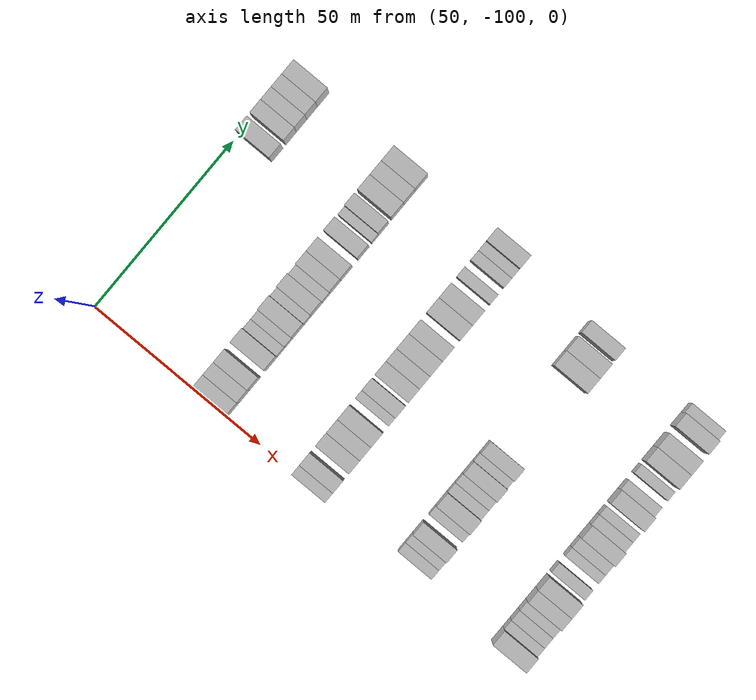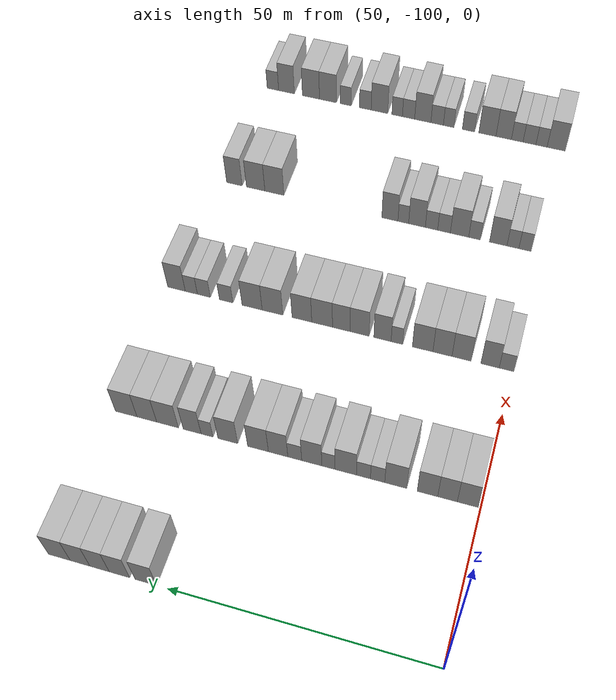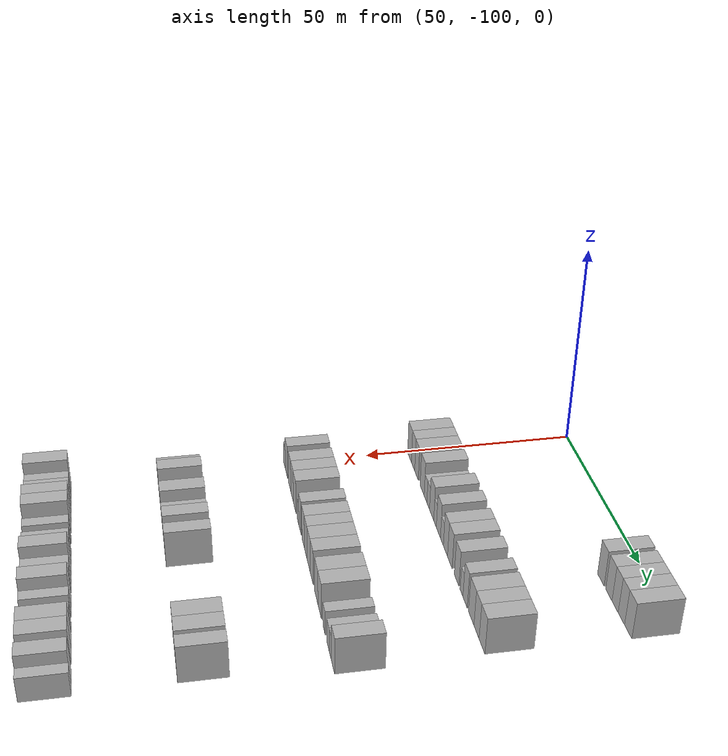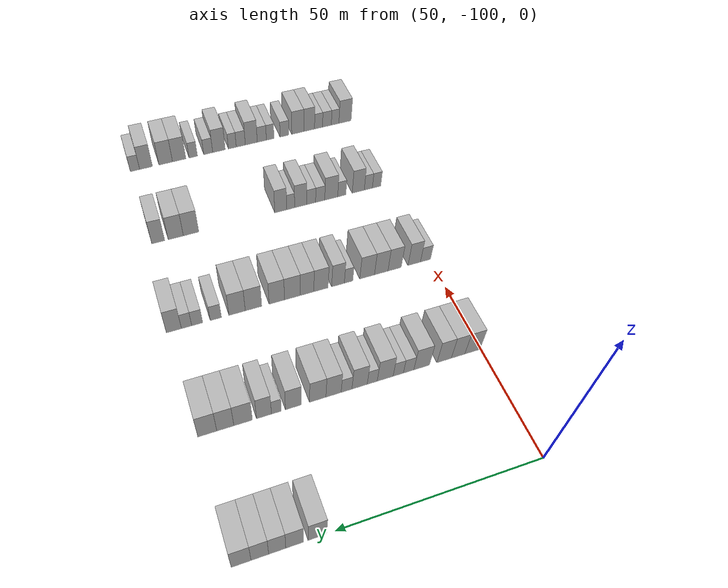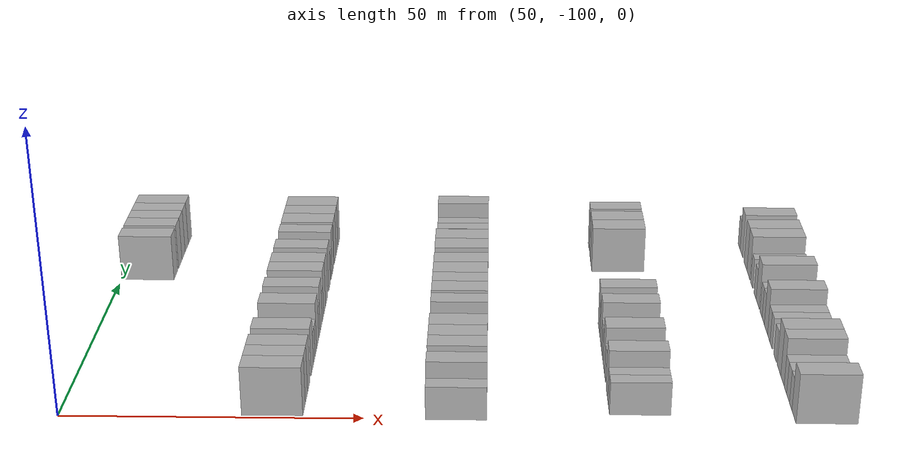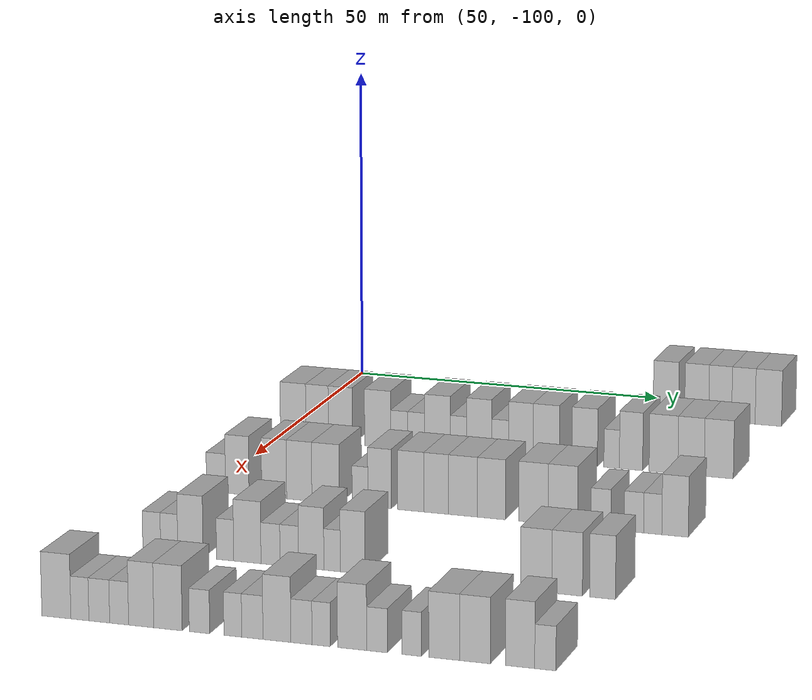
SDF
<sdf version="1.6">
 <world name="default">
  <model name="building_335">
   <static>1</static>
   <pose>55.0000 -45.9378 0 0.000000 0.000000 0.000000</pose>
   <link name="link">
    <pose>0 0 4.50 0 0 0</pose>
    <collision name="collision"><geometry><box><size>10.0000 4.1209 9.0000</size></box></geometry></collision>
    <visual name="visual">
     <cast_shadows>0</cast_shadows>
     <geometry><box><size>10.0000 4.1209 9.0000</size></box></geometry>
     <material>
      <script>
       <uri>model://HANNAS_wall/materials/scripts</uri>
       <uri>model://HANNAS_wall/materials/textures</uri>
       <name>vrc/HANNAS_wall</name>
      </script>
     </material>
    </visual>
   </link>
  </model>
  <model name="building_336">
   <static>1</static>
   <pose>55.0000 -40.9254 0 0.000000 0.000000 0.000000</pose>
   <link name="link">
    <pose>0 0 4.50 0 0 0</pose>
    <collision name="collision"><geometry><box><size>10.0000 3.9039 9.0000</size></box></geometry></collision>
    <visual name="visual">
     <cast_shadows>0</cast_shadows>
     <geometry><box><size>10.0000 3.9039 9.0000</size></box></geometry>
     <material>
      <script>
       <uri>model://HANNAS_wall/materials/scripts</uri>
       <uri>model://HANNAS_wall/materials/textures</uri>
       <name>vrc/HANNAS_wall</name>
      </script>
     </material>
    </visual>
   </link>
  </model>
  <model name="building_337">
   <static>1</static>
   <pose>55.0000 -37.1171 0 0.000000 0.000000 0.000000</pose>
   <link name="link">
    <pose>0 0 4.50 0 0 0</pose>
    <collision name="collision"><geometry><box><size>10.0000 3.7128 9.0000</size></box></geometry></collision>
    <visual name="visual">
     <cast_shadows>0</cast_shadows>
     <geometry><box><size>10.0000 3.7128 9.0000</size></box></geometry>
     <material>
      <script>
       <uri>model://HANNAS_wall/materials/scripts</uri>
       <uri>model://HANNAS_wall/materials/textures</uri>
       <name>vrc/HANNAS_wall</name>
      </script>
     </material>
    </visual>
   </link>
  </model>
  <model name="building_338">
   <static>1</static>
   <pose>55.0000 -33.3674 0 0.000000 0.000000 0.000000</pose>
   <link name="link">
    <pose>0 0 4.50 0 0 0</pose>
    <collision name="collision"><geometry><box><size>10.0000 3.7865 9.0000</size></box></geometry></collision>
    <visual name="visual">
     <cast_shadows>0</cast_shadows>
     <geometry><box><size>10.0000 3.7865 9.0000</size></box></geometry>
     <material>
      <script>
       <uri>model://HANNAS_wall/materials/scripts</uri>
       <uri>model://HANNAS_wall/materials/textures</uri>
       <name>vrc/HANNAS_wall</name>
      </script>
     </material>
    </visual>
   </link>
  </model>
  <model name="building_339">
   <static>1</static>
   <pose>55.0000 -29.3571 0 0.000000 0.000000 0.000000</pose>
   <link name="link">
    <pose>0 0 4.50 0 0 0</pose>
    <collision name="collision"><geometry><box><size>10.0000 4.2341 9.0000</size></box></geometry></collision>
    <visual name="visual">
     <cast_shadows>0</cast_shadows>
     <geometry><box><size>10.0000 4.2341 9.0000</size></box></geometry>
     <material>
      <script>
       <uri>model://HANNAS_wall/materials/scripts</uri>
       <uri>model://HANNAS_wall/materials/textures</uri>
       <name>vrc/HANNAS_wall</name>
      </script>
     </material>
    </visual>
   </link>
  </model>
  <model name="building_549">
   <static>1</static>
   <pose>85.0000 -97.5582 0 0.000000 0.000000 0.000000</pose>
   <link name="link">
    <pose>0 0 4.50 0 0 0</pose>
    <collision name="collision"><geometry><box><size>10.0000 4.1833 9.0000</size></box></geometry></collision>
    <visual name="visual">
     <cast_shadows>0</cast_shadows>
     <geometry><box><size>10.0000 4.1833 9.0000</size></box></geometry>
     <material>
      <script>
       <uri>model://HANNAS_wall/materials/scripts</uri>
       <uri>model://HANNAS_wall/materials/textures</uri>
       <name>vrc/HANNAS_wall</name>
      </script>
     </material>
    </visual>
   </link>
  </model>
  <model name="building_550">
   <static>1</static>
   <pose>85.0000 -93.6184 0 0.000000 0.000000 0.000000</pose>
   <link name="link">
    <pose>0 0 4.50 0 0 0</pose>
    <collision name="collision"><geometry><box><size>10.0000 3.6963 9.0000</size></box></geometry></collision>
    <visual name="visual">
     <cast_shadows>0</cast_shadows>
     <geometry><box><size>10.0000 3.6963 9.0000</size></box></geometry>
     <material>
      <script>
       <uri>model://HANNAS_wall/materials/scripts</uri>
       <uri>model://HANNAS_wall/materials/textures</uri>
       <name>vrc/HANNAS_wall</name>
      </script>
     </material>
    </visual>
   </link>
  </model>
  <model name="building_551">
   <static>1</static>
   <pose>85.0000 -89.8172 0 0.000000 0.000000 0.000000</pose>
   <link name="link">
    <pose>0 0 4.50 0 0 0</pose>
    <collision name="collision"><geometry><box><size>10.0000 3.9061 9.0000</size></box></geometry></collision>
    <visual name="visual">
     <cast_shadows>0</cast_shadows>
     <geometry><box><size>10.0000 3.9061 9.0000</size></box></geometry>
     <material>
      <script>
       <uri>model://HANNAS_wall/materials/scripts</uri>
       <uri>model://HANNAS_wall/materials/textures</uri>
       <name>vrc/HANNAS_wall</name>
      </script>
     </material>
    </visual>
   </link>
  </model>
  <model name="building_552">
   <static>1</static>
   <pose>85.0000 -83.7519 0 0.000000 0.000000 0.000000</pose>
   <link name="link">
    <pose>0 0 4.50 0 0 0</pose>
    <collision name="collision"><geometry><box><size>10.0000 4.2245 9.0000</size></box></geometry></collision>
    <visual name="visual">
     <cast_shadows>0</cast_shadows>
     <geometry><box><size>10.0000 4.2245 9.0000</size></box></geometry>
     <material>
      <script>
       <uri>model://HANNAS_wall/materials/scripts</uri>
       <uri>model://HANNAS_wall/materials/textures</uri>
       <name>vrc/HANNAS_wall</name>
      </script>
     </material>
    </visual>
   </link>
  </model>
  <model name="building_553">
   <static>1</static>
   <pose>85.0000 -80.2544 0 0.000000 0.000000 0.000000</pose>
   <link name="link">
    <pose>0 0 3.00 0 0 0</pose>
    <collision name="collision"><geometry><box><size>10.0000 2.7707 6.0000</size></box></geometry></collision>
    <visual name="visual">
     <cast_shadows>0</cast_shadows>
     <geometry><box><size>10.0000 2.7707 6.0000</size></box></geometry>
     <material>
      <script>
       <uri>model://HANNAS_wall/materials/scripts</uri>
       <uri>model://HANNAS_wall/materials/textures</uri>
       <name>vrc/HANNAS_wall</name>
      </script>
     </material>
    </visual>
   </link>
  </model>
  <model name="building_554">
   <static>1</static>
   <pose>85.0000 -77.5108 0 0.000000 0.000000 0.000000</pose>
   <link name="link">
    <pose>0 0 3.00 0 0 0</pose>
    <collision name="collision"><geometry><box><size>10.0000 2.7165 6.0000</size></box></geometry></collision>
    <visual name="visual">
     <cast_shadows>0</cast_shadows>
     <geometry><box><size>10.0000 2.7165 6.0000</size></box></geometry>
     <material>
      <script>
       <uri>model://HANNAS_wall/materials/scripts</uri>
       <uri>model://HANNAS_wall/materials/textures</uri>
       <name>vrc/HANNAS_wall</name>
      </script>
     </material>
    </visual>
   </link>
  </model>
  <model name="building_555">
   <static>1</static>
   <pose>85.0000 -74.0715 0 0.000000 0.000000 0.000000</pose>
   <link name="link">
    <pose>0 0 4.50 0 0 0</pose>
    <collision name="collision"><geometry><box><size>10.0000 4.1619 9.0000</size></box></geometry></collision>
    <visual name="visual">
     <cast_shadows>0</cast_shadows>
     <geometry><box><size>10.0000 4.1619 9.0000</size></box></geometry>
     <material>
      <script>
       <uri>model://HANNAS_wall/materials/scripts</uri>
       <uri>model://HANNAS_wall/materials/textures</uri>
       <name>vrc/HANNAS_wall</name>
      </script>
     </material>
    </visual>
   </link>
  </model>
  <model name="building_556">
   <static>1</static>
   <pose>85.0000 -70.6947 0 0.000000 0.000000 0.000000</pose>
   <link name="link">
    <pose>0 0 3.00 0 0 0</pose>
    <collision name="collision"><geometry><box><size>10.0000 2.5919 6.0000</size></box></geometry></collision>
    <visual name="visual">
     <cast_shadows>0</cast_shadows>
     <geometry><box><size>10.0000 2.5919 6.0000</size></box></geometry>
     <material>
      <script>
       <uri>model://HANNAS_wall/materials/scripts</uri>
       <uri>model://HANNAS_wall/materials/textures</uri>
       <name>vrc/HANNAS_wall</name>
      </script>
     </material>
    </visual>
   </link>
  </model>
  <model name="building_557">
   <static>1</static>
   <pose>85.0000 -67.4216 0 0.000000 0.000000 0.000000</pose>
   <link name="link">
    <pose>0 0 4.50 0 0 0</pose>
    <collision name="collision"><geometry><box><size>10.0000 3.9542 9.0000</size></box></geometry></collision>
    <visual name="visual">
     <cast_shadows>0</cast_shadows>
     <geometry><box><size>10.0000 3.9542 9.0000</size></box></geometry>
     <material>
      <script>
       <uri>model://HANNAS_wall/materials/scripts</uri>
       <uri>model://HANNAS_wall/materials/textures</uri>
       <name>vrc/HANNAS_wall</name>
      </script>
     </material>
    </visual>
   </link>
  </model>
  <model name="building_558">
   <static>1</static>
   <pose>85.0000 -64.0643 0 0.000000 0.000000 0.000000</pose>
   <link name="link">
    <pose>0 0 3.00 0 0 0</pose>
    <collision name="collision"><geometry><box><size>10.0000 2.7604 6.0000</size></box></geometry></collision>
    <visual name="visual">
     <cast_shadows>0</cast_shadows>
     <geometry><box><size>10.0000 2.7604 6.0000</size></box></geometry>
     <material>
      <script>
       <uri>model://HANNAS_wall/materials/scripts</uri>
       <uri>model://HANNAS_wall/materials/textures</uri>
       <name>vrc/HANNAS_wall</name>
      </script>
     </material>
    </visual>
   </link>
  </model>
  <model name="building_559">
   <static>1</static>
   <pose>85.0000 -60.7531 0 0.000000 0.000000 0.000000</pose>
   <link name="link">
    <pose>0 0 4.50 0 0 0</pose>
    <collision name="collision"><geometry><box><size>10.0000 3.8621 9.0000</size></box></geometry></collision>
    <visual name="visual">
     <cast_shadows>0</cast_shadows>
     <geometry><box><size>10.0000 3.8621 9.0000</size></box></geometry>
     <material>
      <script>
       <uri>model://HANNAS_wall/materials/scripts</uri>
       <uri>model://HANNAS_wall/materials/textures</uri>
       <name>vrc/HANNAS_wall</name>
      </script>
     </material>
    </visual>
   </link>
  </model>
  <model name="building_560">
   <static>1</static>
   <pose>85.0000 -56.7525 0 0.000000 0.000000 0.000000</pose>
   <link name="link">
    <pose>0 0 4.50 0 0 0</pose>
    <collision name="collision"><geometry><box><size>10.0000 4.1392 9.0000</size></box></geometry></collision>
    <visual name="visual">
     <cast_shadows>0</cast_shadows>
     <geometry><box><size>10.0000 4.1392 9.0000</size></box></geometry>
     <material>
      <script>
       <uri>model://HANNAS_wall/materials/scripts</uri>
       <uri>model://HANNAS_wall/materials/textures</uri>
       <name>vrc/HANNAS_wall</name>
      </script>
     </material>
    </visual>
   </link>
  </model>
  <model name="building_561">
   <static>1</static>
   <pose>85.0000 -50.6869 0 0.000000 0.000000 0.000000</pose>
   <link name="link">
    <pose>0 0 4.50 0 0 0</pose>
    <collision name="collision"><geometry><box><size>10.0000 3.9920 9.0000</size></box></geometry></collision>
    <visual name="visual">
     <cast_shadows>0</cast_shadows>
     <geometry><box><size>10.0000 3.9920 9.0000</size></box></geometry>
     <material>
      <script>
       <uri>model://HANNAS_wall/materials/scripts</uri>
       <uri>model://HANNAS_wall/materials/textures</uri>
       <name>vrc/HANNAS_wall</name>
      </script>
     </material>
    </visual>
   </link>
  </model>
  <model name="building_562">
   <static>1</static>
   <pose>85.0000 -46.4776 0 0.000000 0.000000 0.000000</pose>
   <link name="link">
    <pose>0 0 3.00 0 0 0</pose>
    <collision name="collision"><geometry><box><size>10.0000 2.4266 6.0000</size></box></geometry></collision>
    <visual name="visual">
     <cast_shadows>0</cast_shadows>
     <geometry><box><size>10.0000 2.4266 6.0000</size></box></geometry>
     <material>
      <script>
       <uri>model://HANNAS_wall/materials/scripts</uri>
       <uri>model://HANNAS_wall/materials/textures</uri>
       <name>vrc/HANNAS_wall</name>
      </script>
     </material>
    </visual>
   </link>
  </model>
  <model name="building_563">
   <static>1</static>
   <pose>85.0000 -43.4484 0 0.000000 0.000000 0.000000</pose>
   <link name="link">
    <pose>0 0 4.50 0 0 0</pose>
    <collision name="collision"><geometry><box><size>10.0000 3.6317 9.0000</size></box></geometry></collision>
    <visual name="visual">
     <cast_shadows>0</cast_shadows>
     <geometry><box><size>10.0000 3.6317 9.0000</size></box></geometry>
     <material>
      <script>
       <uri>model://HANNAS_wall/materials/scripts</uri>
       <uri>model://HANNAS_wall/materials/textures</uri>
       <name>vrc/HANNAS_wall</name>
      </script>
     </material>
    </visual>
   </link>
  </model>
  <model name="building_564">
   <static>1</static>
   <pose>85.0000 -38.3982 0 0.000000 0.000000 0.000000</pose>
   <link name="link">
    <pose>0 0 4.50 0 0 0</pose>
    <collision name="collision"><geometry><box><size>10.0000 4.4688 9.0000</size></box></geometry></collision>
    <visual name="visual">
     <cast_shadows>0</cast_shadows>
     <geometry><box><size>10.0000 4.4688 9.0000</size></box></geometry>
     <material>
      <script>
       <uri>model://HANNAS_wall/materials/scripts</uri>
       <uri>model://HANNAS_wall/materials/textures</uri>
       <name>vrc/HANNAS_wall</name>
      </script>
     </material>
    </visual>
   </link>
  </model>
  <model name="building_565">
   <static>1</static>
   <pose>85.0000 -34.1296 0 0.000000 0.000000 0.000000</pose>
   <link name="link">
    <pose>0 0 4.50 0 0 0</pose>
    <collision name="collision"><geometry><box><size>10.0000 4.0683 9.0000</size></box></geometry></collision>
    <visual name="visual">
     <cast_shadows>0</cast_shadows>
     <geometry><box><size>10.0000 4.0683 9.0000</size></box></geometry>
     <material>
      <script>
       <uri>model://HANNAS_wall/materials/scripts</uri>
       <uri>model://HANNAS_wall/materials/textures</uri>
       <name>vrc/HANNAS_wall</name>
      </script>
     </material>
    </visual>
   </link>
  </model>
  <model name="building_566">
   <static>1</static>
   <pose>85.0000 -29.8554 0 0.000000 0.000000 0.000000</pose>
   <link name="link">
    <pose>0 0 4.50 0 0 0</pose>
    <collision name="collision"><geometry><box><size>10.0000 4.4801 9.0000</size></box></geometry></collision>
    <visual name="visual">
     <cast_shadows>0</cast_shadows>
     <geometry><box><size>10.0000 4.4801 9.0000</size></box></geometry>
     <material>
      <script>
       <uri>model://HANNAS_wall/materials/scripts</uri>
       <uri>model://HANNAS_wall/materials/textures</uri>
       <name>vrc/HANNAS_wall</name>
      </script>
     </material>
    </visual>
   </link>
  </model>
  <model name="building_783">
   <static>1</static>
   <pose>115.0000 -98.7167 0 0.000000 0.000000 0.000000</pose>
   <link name="link">
    <pose>0 0 3.00 0 0 0</pose>
    <collision name="collision"><geometry><box><size>10.0000 2.9975 6.0000</size></box></geometry></collision>
    <visual name="visual">
     <cast_shadows>0</cast_shadows>
     <geometry><box><size>10.0000 2.9975 6.0000</size></box></geometry>
     <material>
      <script>
       <uri>model://HANNAS_wall/materials/scripts</uri>
       <uri>model://HANNAS_wall/materials/textures</uri>
       <name>vrc/HANNAS_wall</name>
      </script>
     </material>
    </visual>
   </link>
  </model>
  <model name="building_784">
   <static>1</static>
   <pose>115.0000 -95.3680 0 0.000000 0.000000 0.000000</pose>
   <link name="link">
    <pose>0 0 4.50 0 0 0</pose>
    <collision name="collision"><geometry><box><size>10.0000 3.6999 9.0000</size></box></geometry></collision>
    <visual name="visual">
     <cast_shadows>0</cast_shadows>
     <geometry><box><size>10.0000 3.6999 9.0000</size></box></geometry>
     <material>
      <script>
       <uri>model://HANNAS_wall/materials/scripts</uri>
       <uri>model://HANNAS_wall/materials/textures</uri>
       <name>vrc/HANNAS_wall</name>
      </script>
     </material>
    </visual>
   </link>
  </model>
  <model name="building_785">
   <static>1</static>
   <pose>115.0000 -89.5686 0 0.000000 0.000000 0.000000</pose>
   <link name="link">
    <pose>0 0 4.50 0 0 0</pose>
    <collision name="collision"><geometry><box><size>10.0000 3.8988 9.0000</size></box></geometry></collision>
    <visual name="visual">
     <cast_shadows>0</cast_shadows>
     <geometry><box><size>10.0000 3.8988 9.0000</size></box></geometry>
     <material>
      <script>
       <uri>model://HANNAS_wall/materials/scripts</uri>
       <uri>model://HANNAS_wall/materials/textures</uri>
       <name>vrc/HANNAS_wall</name>
      </script>
     </material>
    </visual>
   </link>
  </model>
  <model name="building_786">
   <static>1</static>
   <pose>115.0000 -85.6522 0 0.000000 0.000000 0.000000</pose>
   <link name="link">
    <pose>0 0 4.50 0 0 0</pose>
    <collision name="collision"><geometry><box><size>10.0000 3.9340 9.0000</size></box></geometry></collision>
    <visual name="visual">
     <cast_shadows>0</cast_shadows>
     <geometry><box><size>10.0000 3.9340 9.0000</size></box></geometry>
     <material>
      <script>
       <uri>model://HANNAS_wall/materials/scripts</uri>
       <uri>model://HANNAS_wall/materials/textures</uri>
       <name>vrc/HANNAS_wall</name>
      </script>
     </material>
    </visual>
   </link>
  </model>
  <model name="building_787">
   <static>1</static>
   <pose>115.0000 -81.5621 0 0.000000 0.000000 0.000000</pose>
   <link name="link">
    <pose>0 0 4.50 0 0 0</pose>
    <collision name="collision"><geometry><box><size>10.0000 4.2463 9.0000</size></box></geometry></collision>
    <visual name="visual">
     <cast_shadows>0</cast_shadows>
     <geometry><box><size>10.0000 4.2463 9.0000</size></box></geometry>
     <material>
      <script>
       <uri>model://HANNAS_wall/materials/scripts</uri>
       <uri>model://HANNAS_wall/materials/textures</uri>
       <name>vrc/HANNAS_wall</name>
      </script>
     </material>
    </visual>
   </link>
  </model>
  <model name="building_788">
   <static>1</static>
   <pose>115.0000 -76.2235 0 0.000000 0.000000 0.000000</pose>
   <link name="link">
    <pose>0 0 3.00 0 0 0</pose>
    <collision name="collision"><geometry><box><size>10.0000 2.4308 6.0000</size></box></geometry></collision>
    <visual name="visual">
     <cast_shadows>0</cast_shadows>
     <geometry><box><size>10.0000 2.4308 6.0000</size></box></geometry>
     <material>
      <script>
       <uri>model://HANNAS_wall/materials/scripts</uri>
       <uri>model://HANNAS_wall/materials/textures</uri>
       <name>vrc/HANNAS_wall</name>
      </script>
     </material>
    </visual>
   </link>
  </model>
  <model name="building_789">
   <static>1</static>
   <pose>115.0000 -73.2068 0 0.000000 0.000000 0.000000</pose>
   <link name="link">
    <pose>0 0 4.50 0 0 0</pose>
    <collision name="collision"><geometry><box><size>10.0000 3.6026 9.0000</size></box></geometry></collision>
    <visual name="visual">
     <cast_shadows>0</cast_shadows>
     <geometry><box><size>10.0000 3.6026 9.0000</size></box></geometry>
     <material>
      <script>
       <uri>model://HANNAS_wall/materials/scripts</uri>
       <uri>model://HANNAS_wall/materials/textures</uri>
       <name>vrc/HANNAS_wall</name>
      </script>
     </material>
    </visual>
   </link>
  </model>
  <model name="building_790">
   <static>1</static>
   <pose>115.0000 -68.4015 0 0.000000 0.000000 0.000000</pose>
   <link name="link">
    <pose>0 0 4.50 0 0 0</pose>
    <collision name="collision"><geometry><box><size>10.0000 4.0081 9.0000</size></box></geometry></collision>
    <visual name="visual">
     <cast_shadows>0</cast_shadows>
     <geometry><box><size>10.0000 4.0081 9.0000</size></box></geometry>
     <material>
      <script>
       <uri>model://HANNAS_wall/materials/scripts</uri>
       <uri>model://HANNAS_wall/materials/textures</uri>
       <name>vrc/HANNAS_wall</name>
      </script>
     </material>
    </visual>
   </link>
  </model>
  <model name="building_791">
   <static>1</static>
   <pose>115.0000 -64.5328 0 0.000000 0.000000 0.000000</pose>
   <link name="link">
    <pose>0 0 4.50 0 0 0</pose>
    <collision name="collision"><geometry><box><size>10.0000 3.7292 9.0000</size></box></geometry></collision>
    <visual name="visual">
     <cast_shadows>0</cast_shadows>
     <geometry><box><size>10.0000 3.7292 9.0000</size></box></geometry>
     <material>
      <script>
       <uri>model://HANNAS_wall/materials/scripts</uri>
       <uri>model://HANNAS_wall/materials/textures</uri>
       <name>vrc/HANNAS_wall</name>
      </script>
     </material>
    </visual>
   </link>
  </model>
  <model name="building_792">
   <static>1</static>
   <pose>115.0000 -60.4602 0 0.000000 0.000000 0.000000</pose>
   <link name="link">
    <pose>0 0 4.50 0 0 0</pose>
    <collision name="collision"><geometry><box><size>10.0000 4.4161 9.0000</size></box></geometry></collision>
    <visual name="visual">
     <cast_shadows>0</cast_shadows>
     <geometry><box><size>10.0000 4.4161 9.0000</size></box></geometry>
     <material>
      <script>
       <uri>model://HANNAS_wall/materials/scripts</uri>
       <uri>model://HANNAS_wall/materials/textures</uri>
       <name>vrc/HANNAS_wall</name>
      </script>
     </material>
    </visual>
   </link>
  </model>
  <model name="building_793">
   <static>1</static>
   <pose>115.0000 -56.1474 0 0.000000 0.000000 0.000000</pose>
   <link name="link">
    <pose>0 0 4.50 0 0 0</pose>
    <collision name="collision"><geometry><box><size>10.0000 4.2093 9.0000</size></box></geometry></collision>
    <visual name="visual">
     <cast_shadows>0</cast_shadows>
     <geometry><box><size>10.0000 4.2093 9.0000</size></box></geometry>
     <material>
      <script>
       <uri>model://HANNAS_wall/materials/scripts</uri>
       <uri>model://HANNAS_wall/materials/textures</uri>
       <name>vrc/HANNAS_wall</name>
      </script>
     </material>
    </visual>
   </link>
  </model>
  <model name="building_794">
   <static>1</static>
   <pose>115.0000 -49.8138 0 0.000000 0.000000 0.000000</pose>
   <link name="link">
    <pose>0 0 4.50 0 0 0</pose>
    <collision name="collision"><geometry><box><size>10.0000 4.4579 9.0000</size></box></geometry></collision>
    <visual name="visual">
     <cast_shadows>0</cast_shadows>
     <geometry><box><size>10.0000 4.4579 9.0000</size></box></geometry>
     <material>
      <script>
       <uri>model://HANNAS_wall/materials/scripts</uri>
       <uri>model://HANNAS_wall/materials/textures</uri>
       <name>vrc/HANNAS_wall</name>
      </script>
     </material>
    </visual>
   </link>
  </model>
  <model name="building_795">
   <static>1</static>
   <pose>115.0000 -45.3985 0 0.000000 0.000000 0.000000</pose>
   <link name="link">
    <pose>0 0 4.50 0 0 0</pose>
    <collision name="collision"><geometry><box><size>10.0000 4.3727 9.0000</size></box></geometry></collision>
    <visual name="visual">
     <cast_shadows>0</cast_shadows>
     <geometry><box><size>10.0000 4.3727 9.0000</size></box></geometry>
     <material>
      <script>
       <uri>model://HANNAS_wall/materials/scripts</uri>
       <uri>model://HANNAS_wall/materials/textures</uri>
       <name>vrc/HANNAS_wall</name>
      </script>
     </material>
    </visual>
   </link>
  </model>
  <model name="building_796">
   <static>1</static>
   <pose>115.0000 -39.7359 0 0.000000 0.000000 0.000000</pose>
   <link name="link">
    <pose>0 0 3.00 0 0 0</pose>
    <collision name="collision"><geometry><box><size>10.0000 2.9525 6.0000</size></box></geometry></collision>
    <visual name="visual">
     <cast_shadows>0</cast_shadows>
     <geometry><box><size>10.0000 2.9525 6.0000</size></box></geometry>
     <material>
      <script>
       <uri>model://HANNAS_wall/materials/scripts</uri>
       <uri>model://HANNAS_wall/materials/textures</uri>
       <name>vrc/HANNAS_wall</name>
      </script>
     </material>
    </visual>
   </link>
  </model>
  <model name="building_797">
   <static>1</static>
   <pose>115.0000 -34.8312 0 0.000000 0.000000 0.000000</pose>
   <link name="link">
    <pose>0 0 3.00 0 0 0</pose>
    <collision name="collision"><geometry><box><size>10.0000 2.8570 6.0000</size></box></geometry></collision>
    <visual name="visual">
     <cast_shadows>0</cast_shadows>
     <geometry><box><size>10.0000 2.8570 6.0000</size></box></geometry>
     <material>
      <script>
       <uri>model://HANNAS_wall/materials/scripts</uri>
       <uri>model://HANNAS_wall/materials/textures</uri>
       <name>vrc/HANNAS_wall</name>
      </script>
     </material>
    </visual>
   </link>
  </model>
  <model name="building_798">
   <static>1</static>
   <pose>115.0000 -32.0629 0 0.000000 0.000000 0.000000</pose>
   <link name="link">
    <pose>0 0 3.00 0 0 0</pose>
    <collision name="collision"><geometry><box><size>10.0000 2.6796 6.0000</size></box></geometry></collision>
    <visual name="visual">
     <cast_shadows>0</cast_shadows>
     <geometry><box><size>10.0000 2.6796 6.0000</size></box></geometry>
     <material>
      <script>
       <uri>model://HANNAS_wall/materials/scripts</uri>
       <uri>model://HANNAS_wall/materials/textures</uri>
       <name>vrc/HANNAS_wall</name>
      </script>
     </material>
    </visual>
   </link>
  </model>
  <model name="building_799">
   <static>1</static>
   <pose>115.0000 -28.7729 0 0.000000 0.000000 0.000000</pose>
   <link name="link">
    <pose>0 0 4.50 0 0 0</pose>
    <collision name="collision"><geometry><box><size>10.0000 3.9005 9.0000</size></box></geometry></collision>
    <visual name="visual">
     <cast_shadows>0</cast_shadows>
     <geometry><box><size>10.0000 3.9005 9.0000</size></box></geometry>
     <material>
      <script>
       <uri>model://HANNAS_wall/materials/scripts</uri>
       <uri>model://HANNAS_wall/materials/textures</uri>
       <name>vrc/HANNAS_wall</name>
      </script>
     </material>
    </visual>
   </link>
  </model>
  <model name="building_1011">
   <static>1</static>
   <pose>145.0000 -96.7479 0 0.000000 0.000000 0.000000</pose>
   <link name="link">
    <pose>0 0 3.00 0 0 0</pose>
    <collision name="collision"><geometry><box><size>10.0000 2.6836 6.0000</size></box></geometry></collision>
    <visual name="visual">
     <cast_shadows>0</cast_shadows>
     <geometry><box><size>10.0000 2.6836 6.0000</size></box></geometry>
     <material>
      <script>
       <uri>model://HANNAS_wall/materials/scripts</uri>
       <uri>model://HANNAS_wall/materials/textures</uri>
       <name>vrc/HANNAS_wall</name>
      </script>
     </material>
    </visual>
   </link>
  </model>
  <model name="building_1012">
   <static>1</static>
   <pose>145.0000 -94.1157 0 0.000000 0.000000 0.000000</pose>
   <link name="link">
    <pose>0 0 3.00 0 0 0</pose>
    <collision name="collision"><geometry><box><size>10.0000 2.5808 6.0000</size></box></geometry></collision>
    <visual name="visual">
     <cast_shadows>0</cast_shadows>
     <geometry><box><size>10.0000 2.5808 6.0000</size></box></geometry>
     <material>
      <script>
       <uri>model://HANNAS_wall/materials/scripts</uri>
       <uri>model://HANNAS_wall/materials/textures</uri>
       <name>vrc/HANNAS_wall</name>
      </script>
     </material>
    </visual>
   </link>
  </model>
  <model name="building_1013">
   <static>1</static>
   <pose>145.0000 -90.9190 0 0.000000 0.000000 0.000000</pose>
   <link name="link">
    <pose>0 0 4.50 0 0 0</pose>
    <collision name="collision"><geometry><box><size>10.0000 3.8125 9.0000</size></box></geometry></collision>
    <visual name="visual">
     <cast_shadows>0</cast_shadows>
     <geometry><box><size>10.0000 3.8125 9.0000</size></box></geometry>
     <material>
      <script>
       <uri>model://HANNAS_wall/materials/scripts</uri>
       <uri>model://HANNAS_wall/materials/textures</uri>
       <name>vrc/HANNAS_wall</name>
      </script>
     </material>
    </visual>
   </link>
  </model>
  <model name="building_1014">
   <static>1</static>
   <pose>145.0000 -85.7305 0 0.000000 0.000000 0.000000</pose>
   <link name="link">
    <pose>0 0 3.00 0 0 0</pose>
    <collision name="collision"><geometry><box><size>10.0000 2.5646 6.0000</size></box></geometry></collision>
    <visual name="visual">
     <cast_shadows>0</cast_shadows>
     <geometry><box><size>10.0000 2.5646 6.0000</size></box></geometry>
     <material>
      <script>
       <uri>model://HANNAS_wall/materials/scripts</uri>
       <uri>model://HANNAS_wall/materials/textures</uri>
       <name>vrc/HANNAS_wall</name>
      </script>
     </material>
    </visual>
   </link>
  </model>
  <model name="building_1015">
   <static>1</static>
   <pose>145.0000 -82.4205 0 0.000000 0.000000 0.000000</pose>
   <link name="link">
    <pose>0 0 4.50 0 0 0</pose>
    <collision name="collision"><geometry><box><size>10.0000 4.0554 9.0000</size></box></geometry></collision>
    <visual name="visual">
     <cast_shadows>0</cast_shadows>
     <geometry><box><size>10.0000 4.0554 9.0000</size></box></geometry>
     <material>
      <script>
       <uri>model://HANNAS_wall/materials/scripts</uri>
       <uri>model://HANNAS_wall/materials/textures</uri>
       <name>vrc/HANNAS_wall</name>
      </script>
     </material>
    </visual>
   </link>
  </model>
  <model name="building_1016">
   <static>1</static>
   <pose>145.0000 -78.9833 0 0.000000 0.000000 0.000000</pose>
   <link name="link">
    <pose>0 0 3.00 0 0 0</pose>
    <collision name="collision"><geometry><box><size>10.0000 2.8191 6.0000</size></box></geometry></collision>
    <visual name="visual">
     <cast_shadows>0</cast_shadows>
     <geometry><box><size>10.0000 2.8191 6.0000</size></box></geometry>
     <material>
      <script>
       <uri>model://HANNAS_wall/materials/scripts</uri>
       <uri>model://HANNAS_wall/materials/textures</uri>
       <name>vrc/HANNAS_wall</name>
      </script>
     </material>
    </visual>
   </link>
  </model>
  <model name="building_1017">
   <static>1</static>
   <pose>145.0000 -76.2019 0 0.000000 0.000000 0.000000</pose>
   <link name="link">
    <pose>0 0 3.00 0 0 0</pose>
    <collision name="collision"><geometry><box><size>10.0000 2.7436 6.0000</size></box></geometry></collision>
    <visual name="visual">
     <cast_shadows>0</cast_shadows>
     <geometry><box><size>10.0000 2.7436 6.0000</size></box></geometry>
     <material>
      <script>
       <uri>model://HANNAS_wall/materials/scripts</uri>
       <uri>model://HANNAS_wall/materials/textures</uri>
       <name>vrc/HANNAS_wall</name>
      </script>
     </material>
    </visual>
   </link>
  </model>
  <model name="building_1018">
   <static>1</static>
   <pose>145.0000 -72.9665 0 0.000000 0.000000 0.000000</pose>
   <link name="link">
    <pose>0 0 4.50 0 0 0</pose>
    <collision name="collision"><geometry><box><size>10.0000 3.7271 9.0000</size></box></geometry></collision>
    <visual name="visual">
     <cast_shadows>0</cast_shadows>
     <geometry><box><size>10.0000 3.7271 9.0000</size></box></geometry>
     <material>
      <script>
       <uri>model://HANNAS_wall/materials/scripts</uri>
       <uri>model://HANNAS_wall/materials/textures</uri>
       <name>vrc/HANNAS_wall</name>
      </script>
     </material>
    </visual>
   </link>
  </model>
  <model name="building_1019">
   <static>1</static>
   <pose>145.0000 -69.9026 0 0.000000 0.000000 0.000000</pose>
   <link name="link">
    <pose>0 0 3.00 0 0 0</pose>
    <collision name="collision"><geometry><box><size>10.0000 2.4009 6.0000</size></box></geometry></collision>
    <visual name="visual">
     <cast_shadows>0</cast_shadows>
     <geometry><box><size>10.0000 2.4009 6.0000</size></box></geometry>
     <material>
      <script>
       <uri>model://HANNAS_wall/materials/scripts</uri>
       <uri>model://HANNAS_wall/materials/textures</uri>
       <name>vrc/HANNAS_wall</name>
      </script>
     </material>
    </visual>
   </link>
  </model>
  <model name="building_1020">
   <static>1</static>
   <pose>145.0000 -66.8941 0 0.000000 0.000000 0.000000</pose>
   <link name="link">
    <pose>0 0 4.50 0 0 0</pose>
    <collision name="collision"><geometry><box><size>10.0000 3.6160 9.0000</size></box></geometry></collision>
    <visual name="visual">
     <cast_shadows>0</cast_shadows>
     <geometry><box><size>10.0000 3.6160 9.0000</size></box></geometry>
     <material>
      <script>
       <uri>model://HANNAS_wall/materials/scripts</uri>
       <uri>model://HANNAS_wall/materials/textures</uri>
       <name>vrc/HANNAS_wall</name>
      </script>
     </material>
    </visual>
   </link>
  </model>
  <model name="building_1021">
   <static>1</static>
   <pose>145.0000 -40.4315 0 0.000000 0.000000 0.000000</pose>
   <link name="link">
    <pose>0 0 4.50 0 0 0</pose>
    <collision name="collision"><geometry><box><size>10.0000 4.4364 9.0000</size></box></geometry></collision>
    <visual name="visual">
     <cast_shadows>0</cast_shadows>
     <geometry><box><size>10.0000 4.4364 9.0000</size></box></geometry>
     <material>
      <script>
       <uri>model://HANNAS_wall/materials/scripts</uri>
       <uri>model://HANNAS_wall/materials/textures</uri>
       <name>vrc/HANNAS_wall</name>
      </script>
     </material>
    </visual>
   </link>
  </model>
  <model name="building_1022">
   <static>1</static>
   <pose>145.0000 -36.0567 0 0.000000 0.000000 0.000000</pose>
   <link name="link">
    <pose>0 0 4.50 0 0 0</pose>
    <collision name="collision"><geometry><box><size>10.0000 4.3134 9.0000</size></box></geometry></collision>
    <visual name="visual">
     <cast_shadows>0</cast_shadows>
     <geometry><box><size>10.0000 4.3134 9.0000</size></box></geometry>
     <material>
      <script>
       <uri>model://HANNAS_wall/materials/scripts</uri>
       <uri>model://HANNAS_wall/materials/textures</uri>
       <name>vrc/HANNAS_wall</name>
      </script>
     </material>
    </visual>
   </link>
  </model>
  <model name="building_1023">
   <static>1</static>
   <pose>145.0000 -31.0765 0 0.000000 0.000000 0.000000</pose>
   <link name="link">
    <pose>0 0 4.50 0 0 0</pose>
    <collision name="collision"><geometry><box><size>10.0000 3.6469 9.0000</size></box></geometry></collision>
    <visual name="visual">
     <cast_shadows>0</cast_shadows>
     <geometry><box><size>10.0000 3.6469 9.0000</size></box></geometry>
     <material>
      <script>
       <uri>model://HANNAS_wall/materials/scripts</uri>
       <uri>model://HANNAS_wall/materials/textures</uri>
       <name>vrc/HANNAS_wall</name>
      </script>
     </material>
    </visual>
   </link>
  </model>
  <model name="building_1228">
   <static>1</static>
   <pose>175.0000 -98.2642 0 0.000000 0.000000 0.000000</pose>
   <link name="link">
    <pose>0 0 4.50 0 0 0</pose>
    <collision name="collision"><geometry><box><size>10.0000 4.2008 9.0000</size></box></geometry></collision>
    <visual name="visual">
     <cast_shadows>0</cast_shadows>
     <geometry><box><size>10.0000 4.2008 9.0000</size></box></geometry>
     <material>
      <script>
       <uri>model://HANNAS_wall/materials/scripts</uri>
       <uri>model://HANNAS_wall/materials/textures</uri>
       <name>vrc/HANNAS_wall</name>
      </script>
     </material>
    </visual>
   </link>
  </model>
  <model name="building_1229">
   <static>1</static>
   <pose>175.0000 -94.8686 0 0.000000 0.000000 0.000000</pose>
   <link name="link">
    <pose>0 0 3.00 0 0 0</pose>
    <collision name="collision"><geometry><box><size>10.0000 2.5904 6.0000</size></box></geometry></collision>
    <visual name="visual">
     <cast_shadows>0</cast_shadows>
     <geometry><box><size>10.0000 2.5904 6.0000</size></box></geometry>
     <material>
      <script>
       <uri>model://HANNAS_wall/materials/scripts</uri>
       <uri>model://HANNAS_wall/materials/textures</uri>
       <name>vrc/HANNAS_wall</name>
      </script>
     </material>
    </visual>
   </link>
  </model>
  <model name="building_1230">
   <static>1</static>
   <pose>175.0000 -92.0808 0 0.000000 0.000000 0.000000</pose>
   <link name="link">
    <pose>0 0 3.00 0 0 0</pose>
    <collision name="collision"><geometry><box><size>10.0000 2.9853 6.0000</size></box></geometry></collision>
    <visual name="visual">
     <cast_shadows>0</cast_shadows>
     <geometry><box><size>10.0000 2.9853 6.0000</size></box></geometry>
     <material>
      <script>
       <uri>model://HANNAS_wall/materials/scripts</uri>
       <uri>model://HANNAS_wall/materials/textures</uri>
       <name>vrc/HANNAS_wall</name>
      </script>
     </material>
    </visual>
   </link>
  </model>
  <model name="building_1231">
   <static>1</static>
   <pose>175.0000 -89.2316 0 0.000000 0.000000 0.000000</pose>
   <link name="link">
    <pose>0 0 3.00 0 0 0</pose>
    <collision name="collision"><geometry><box><size>10.0000 2.7130 6.0000</size></box></geometry></collision>
    <visual name="visual">
     <cast_shadows>0</cast_shadows>
     <geometry><box><size>10.0000 2.7130 6.0000</size></box></geometry>
     <material>
      <script>
       <uri>model://HANNAS_wall/materials/scripts</uri>
       <uri>model://HANNAS_wall/materials/textures</uri>
       <name>vrc/HANNAS_wall</name>
      </script>
     </material>
    </visual>
   </link>
  </model>
  <model name="building_1232">
   <static>1</static>
   <pose>175.0000 -86.0743 0 0.000000 0.000000 0.000000</pose>
   <link name="link">
    <pose>0 0 4.50 0 0 0</pose>
    <collision name="collision"><geometry><box><size>10.0000 3.6016 9.0000</size></box></geometry></collision>
    <visual name="visual">
     <cast_shadows>0</cast_shadows>
     <geometry><box><size>10.0000 3.6016 9.0000</size></box></geometry>
     <material>
      <script>
       <uri>model://HANNAS_wall/materials/scripts</uri>
       <uri>model://HANNAS_wall/materials/textures</uri>
       <name>vrc/HANNAS_wall</name>
      </script>
     </material>
    </visual>
   </link>
  </model>
  <model name="building_1233">
   <static>1</static>
   <pose>175.0000 -82.2590 0 0.000000 0.000000 0.000000</pose>
   <link name="link">
    <pose>0 0 4.50 0 0 0</pose>
    <collision name="collision"><geometry><box><size>10.0000 4.0290 9.0000</size></box></geometry></collision>
    <visual name="visual">
     <cast_shadows>0</cast_shadows>
     <geometry><box><size>10.0000 4.0290 9.0000</size></box></geometry>
     <material>
      <script>
       <uri>model://HANNAS_wall/materials/scripts</uri>
       <uri>model://HANNAS_wall/materials/textures</uri>
       <name>vrc/HANNAS_wall</name>
      </script>
     </material>
    </visual>
   </link>
  </model>
  <model name="building_1234">
   <static>1</static>
   <pose>175.0000 -77.8004 0 0.000000 0.000000 0.000000</pose>
   <link name="link">
    <pose>0 0 3.00 0 0 0</pose>
    <collision name="collision"><geometry><box><size>10.0000 2.8883 6.0000</size></box></geometry></collision>
    <visual name="visual">
     <cast_shadows>0</cast_shadows>
     <geometry><box><size>10.0000 2.8883 6.0000</size></box></geometry>
     <material>
      <script>
       <uri>model://HANNAS_wall/materials/scripts</uri>
       <uri>model://HANNAS_wall/materials/textures</uri>
       <name>vrc/HANNAS_wall</name>
      </script>
     </material>
    </visual>
   </link>
  </model>
  <model name="building_1235">
   <static>1</static>
   <pose>175.0000 -73.1026 0 0.000000 0.000000 0.000000</pose>
   <link name="link">
    <pose>0 0 3.00 0 0 0</pose>
    <collision name="collision"><geometry><box><size>10.0000 2.5074 6.0000</size></box></geometry></collision>
    <visual name="visual">
     <cast_shadows>0</cast_shadows>
     <geometry><box><size>10.0000 2.5074 6.0000</size></box></geometry>
     <material>
      <script>
       <uri>model://HANNAS_wall/materials/scripts</uri>
       <uri>model://HANNAS_wall/materials/textures</uri>
       <name>vrc/HANNAS_wall</name>
      </script>
     </material>
    </visual>
   </link>
  </model>
  <model name="building_1236">
   <static>1</static>
   <pose>175.0000 -70.3616 0 0.000000 0.000000 0.000000</pose>
   <link name="link">
    <pose>0 0 3.00 0 0 0</pose>
    <collision name="collision"><geometry><box><size>10.0000 2.9747 6.0000</size></box></geometry></collision>
    <visual name="visual">
     <cast_shadows>0</cast_shadows>
     <geometry><box><size>10.0000 2.9747 6.0000</size></box></geometry>
     <material>
      <script>
       <uri>model://HANNAS_wall/materials/scripts</uri>
       <uri>model://HANNAS_wall/materials/textures</uri>
       <name>vrc/HANNAS_wall</name>
      </script>
     </material>
    </visual>
   </link>
  </model>
  <model name="building_1237">
   <static>1</static>
   <pose>175.0000 -66.9305 0 0.000000 0.000000 0.000000</pose>
   <link name="link">
    <pose>0 0 4.50 0 0 0</pose>
    <collision name="collision"><geometry><box><size>10.0000 3.8874 9.0000</size></box></geometry></collision>
    <visual name="visual">
     <cast_shadows>0</cast_shadows>
     <geometry><box><size>10.0000 3.8874 9.0000</size></box></geometry>
     <material>
      <script>
       <uri>model://HANNAS_wall/materials/scripts</uri>
       <uri>model://HANNAS_wall/materials/textures</uri>
       <name>vrc/HANNAS_wall</name>
      </script>
     </material>
    </visual>
   </link>
  </model>
  <model name="building_1238">
   <static>1</static>
   <pose>175.0000 -63.5172 0 0.000000 0.000000 0.000000</pose>
   <link name="link">
    <pose>0 0 3.00 0 0 0</pose>
    <collision name="collision"><geometry><box><size>10.0000 2.9391 6.0000</size></box></geometry></collision>
    <visual name="visual">
     <cast_shadows>0</cast_shadows>
     <geometry><box><size>10.0000 2.9391 6.0000</size></box></geometry>
     <material>
      <script>
       <uri>model://HANNAS_wall/materials/scripts</uri>
       <uri>model://HANNAS_wall/materials/textures</uri>
       <name>vrc/HANNAS_wall</name>
      </script>
     </material>
    </visual>
   </link>
  </model>
  <model name="building_1239">
   <static>1</static>
   <pose>175.0000 -60.7792 0 0.000000 0.000000 0.000000</pose>
   <link name="link">
    <pose>0 0 3.00 0 0 0</pose>
    <collision name="collision"><geometry><box><size>10.0000 2.5370 6.0000</size></box></geometry></collision>
    <visual name="visual">
     <cast_shadows>0</cast_shadows>
     <geometry><box><size>10.0000 2.5370 6.0000</size></box></geometry>
     <material>
      <script>
       <uri>model://HANNAS_wall/materials/scripts</uri>
       <uri>model://HANNAS_wall/materials/textures</uri>
       <name>vrc/HANNAS_wall</name>
      </script>
     </material>
    </visual>
   </link>
  </model>
  <model name="building_1240">
   <static>1</static>
   <pose>175.0000 -56.5030 0 0.000000 0.000000 0.000000</pose>
   <link name="link">
    <pose>0 0 4.50 0 0 0</pose>
    <collision name="collision"><geometry><box><size>10.0000 4.0154 9.0000</size></box></geometry></collision>
    <visual name="visual">
     <cast_shadows>0</cast_shadows>
     <geometry><box><size>10.0000 4.0154 9.0000</size></box></geometry>
     <material>
      <script>
       <uri>model://HANNAS_wall/materials/scripts</uri>
       <uri>model://HANNAS_wall/materials/textures</uri>
       <name>vrc/HANNAS_wall</name>
      </script>
     </material>
    </visual>
   </link>
  </model>
  <model name="building_1241">
   <static>1</static>
   <pose>175.0000 -53.0701 0 0.000000 0.000000 0.000000</pose>
   <link name="link">
    <pose>0 0 3.00 0 0 0</pose>
    <collision name="collision"><geometry><box><size>10.0000 2.8503 6.0000</size></box></geometry></collision>
    <visual name="visual">
     <cast_shadows>0</cast_shadows>
     <geometry><box><size>10.0000 2.8503 6.0000</size></box></geometry>
     <material>
      <script>
       <uri>model://HANNAS_wall/materials/scripts</uri>
       <uri>model://HANNAS_wall/materials/textures</uri>
       <name>vrc/HANNAS_wall</name>
      </script>
     </material>
    </visual>
   </link>
  </model>
  <model name="building_1242">
   <static>1</static>
   <pose>175.0000 -48.3285 0 0.000000 0.000000 0.000000</pose>
   <link name="link">
    <pose>0 0 3.00 0 0 0</pose>
    <collision name="collision"><geometry><box><size>10.0000 2.6330 6.0000</size></box></geometry></collision>
    <visual name="visual">
     <cast_shadows>0</cast_shadows>
     <geometry><box><size>10.0000 2.6330 6.0000</size></box></geometry>
     <material>
      <script>
       <uri>model://HANNAS_wall/materials/scripts</uri>
       <uri>model://HANNAS_wall/materials/textures</uri>
       <name>vrc/HANNAS_wall</name>
      </script>
     </material>
    </visual>
   </link>
  </model>
  <model name="building_1243">
   <static>1</static>
   <pose>175.0000 -43.9234 0 0.000000 0.000000 0.000000</pose>
   <link name="link">
    <pose>0 0 4.50 0 0 0</pose>
    <collision name="collision"><geometry><box><size>10.0000 4.1772 9.0000</size></box></geometry></collision>
    <visual name="visual">
     <cast_shadows>0</cast_shadows>
     <geometry><box><size>10.0000 4.1772 9.0000</size></box></geometry>
     <material>
      <script>
       <uri>model://HANNAS_wall/materials/scripts</uri>
       <uri>model://HANNAS_wall/materials/textures</uri>
       <name>vrc/HANNAS_wall</name>
      </script>
     </material>
    </visual>
   </link>
  </model>
  <model name="building_1244">
   <static>1</static>
   <pose>175.0000 -39.7283 0 0.000000 0.000000 0.000000</pose>
   <link name="link">
    <pose>0 0 4.50 0 0 0</pose>
    <collision name="collision"><geometry><box><size>10.0000 4.2129 9.0000</size></box></geometry></collision>
    <visual name="visual">
     <cast_shadows>0</cast_shadows>
     <geometry><box><size>10.0000 4.2129 9.0000</size></box></geometry>
     <material>
      <script>
       <uri>model://HANNAS_wall/materials/scripts</uri>
       <uri>model://HANNAS_wall/materials/textures</uri>
       <name>vrc/HANNAS_wall</name>
      </script>
     </material>
    </visual>
   </link>
  </model>
  <model name="building_1245">
   <static>1</static>
   <pose>175.0000 -33.6598 0 0.000000 0.000000 0.000000</pose>
   <link name="link">
    <pose>0 0 4.50 0 0 0</pose>
    <collision name="collision"><geometry><box><size>10.0000 3.9240 9.0000</size></box></geometry></collision>
    <visual name="visual">
     <cast_shadows>0</cast_shadows>
     <geometry><box><size>10.0000 3.9240 9.0000</size></box></geometry>
     <material>
      <script>
       <uri>model://HANNAS_wall/materials/scripts</uri>
       <uri>model://HANNAS_wall/materials/textures</uri>
       <name>vrc/HANNAS_wall</name>
      </script>
     </material>
    </visual>
   </link>
  </model>
  <model name="building_1246">
   <static>1</static>
   <pose>175.0000 -30.2763 0 0.000000 0.000000 0.000000</pose>
   <link name="link">
    <pose>0 0 3.00 0 0 0</pose>
    <collision name="collision"><geometry><box><size>10.0000 2.8431 6.0000</size></box></geometry></collision>
    <visual name="visual">
     <cast_shadows>0</cast_shadows>
     <geometry><box><size>10.0000 2.8431 6.0000</size></box></geometry>
     <material>
      <script>
       <uri>model://HANNAS_wall/materials/scripts</uri>
       <uri>model://HANNAS_wall/materials/textures</uri>
       <name>vrc/HANNAS_wall</name>
      </script>
     </material>
    </visual>
   </link>
  </model>
 </world>
</sdf>
